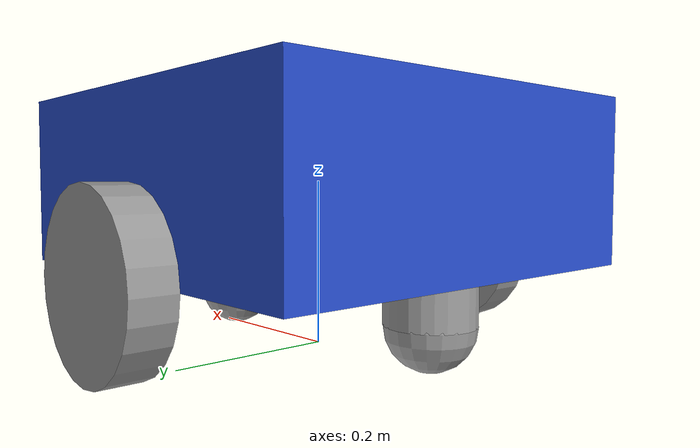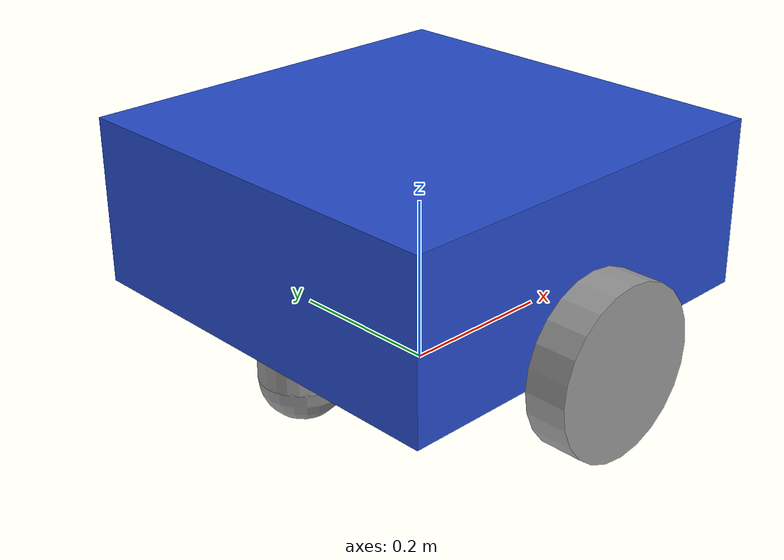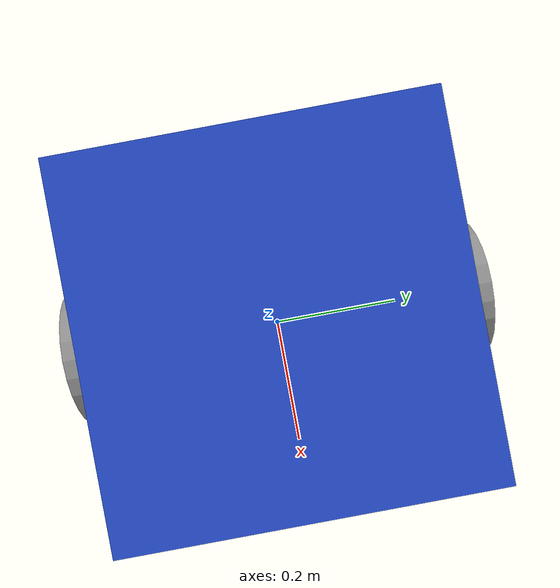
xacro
<?xml version="1.0"?>
<robot name="square_robot" xmlns:xacro="http://www.ros.org/wiki/xacro">

    <xacro:property name="base_length" value="0.5" />
    <xacro:property name="base_width" value="0.5" />
    <xacro:property name="base_height" value="0.2" />
    <xacro:property name="wheel_radius" value="0.1" />
    <xacro:property name="wheel_length" value="0.05" />

    <!-- Base Footprint -->
    <link name="base_footprint" />

    <!-- Base Link (Square Chassis) -->
    <link name="base_link">
        <visual>
            <geometry>
                <box size="${base_length} ${base_width} ${base_height}" />
            </geometry>
            <origin xyz="0 0 0.1" rpy="0 0 0" />
            <material name="blue"/>
        </visual>
        <collision>
            <geometry>
                <box size="${base_length} ${base_width} ${base_height}" />
            </geometry>
            <origin xyz="0 0 0.1" rpy="0 0 0" />
        </collision>
        <xacro:box_inertia m="10.0" x="${base_length}" y="${base_width}" z="${base_height}"
                          o_xyz="0 0 ${base_height / 2.0}" o_rpy="0 0 0" />
    </link>

    <!-- Right Wheel Link -->
    <link name="right_wheel_link">
        <visual>
            <geometry>
                <cylinder radius="${wheel_radius}" length="${wheel_length}" />
            </geometry>
            <origin xyz="0 0 0" rpy="1.5708 0 0" />
            <material name="grey"/>
        </visual>
        <collision>
            <geometry>
                <sphere radius="${wheel_radius}" />
            </geometry>
            <origin xyz="0 0 0" rpy="0 0 0" />
            <surface>
                <friction>
                    <ode>
                        <mu>8.0</mu>
                        <mu2>8.0</mu2>
                    </ode>
                </friction>
            </surface>
        </collision>
        <xacro:cylinder_inertia m="8.0" r="${wheel_radius}" l="${wheel_length}"
                                   o_xyz="0 0 0" o_rpy="${pi / 2.0} 0 0" />
    </link>

    <!-- Left Wheel Link -->
    <link name="left_wheel_link">
        <visual>
            <geometry>
                <cylinder radius="${wheel_radius}" length="${wheel_length}" />
            </geometry>
            <origin xyz="0 0 0" rpy="1.5708 0 0" />
            <material name="grey"/>
        </visual>
        <collision>
            <geometry>
                <sphere radius="${wheel_radius}" />
            </geometry>
            <origin xyz="0 0 0" rpy="0 0 0" />
            <surface>
                <friction>
                    <ode>
                        <mu>8.0</mu>
                        <mu2>8.0</mu2>
                    </ode>
                </friction>
            </surface>
        </collision>
        <xacro:cylinder_inertia m="8.0" r="${wheel_radius}" l="${wheel_length}"
                                   o_xyz="0 0 0" o_rpy="${pi / 2.0} 0 0" />
    </link>

    <!-- Front Caster Wheel Link -->
    <link name="caster_wheel_link">
        <visual>
            <geometry>
                <sphere radius="${wheel_radius / 2.0}" />
            </geometry>
            <origin xyz="0 0 0" rpy="0 0 0" />
            <material name="grey" />
        </visual>
        <collision>
            <geometry>
                <sphere radius="${wheel_radius / 2.0}" />
            </geometry>
            <origin xyz="0 0 0" rpy="0 0 0" />
        </collision>
        <xacro:sphere_inertia m="2.0" r="${wheel_radius / 2.0}"
                             o_xyz="0 0 0" o_rpy="0 0 0" />
    </link>

     <!-- Front Caster Wheel Link rod -->
    <link name="caster_wheel_link_rod">
        <visual>
            <geometry>
                <cylinder radius="${wheel_radius / 2.0}" length="${wheel_radius / 2.0}" />
            </geometry>
            <origin xyz="0 0 0" rpy="0 0 1.5708" />
            <material name="grey" />
        </visual>
        <collision>
            <geometry>
                <cylinder radius="${wheel_radius / 2.0}" length="${wheel_radius / 2.0}" />
            </geometry>
            <origin xyz="0 0 0" rpy="0 0 0" />
        </collision>
       <xacro:sphere_inertia m="2.0" r="${wheel_radius / 2.0}"
                             o_xyz="0 0 0" o_rpy="0 0 0" />
    </link>

    <!-- Back Caster Wheel Link -->
    <link name="caster_wheel_link2">
        <visual>
            <geometry>
                <sphere radius="${wheel_radius / 2.0}" />
            </geometry>
            <origin xyz="0 0 0" rpy="0 0 0" />
            <material name="grey" />
        </visual>
        <collision>
            <geometry>
                <sphere radius="${wheel_radius / 2.0}" />
            </geometry>
            <origin xyz="0 0 0" rpy="0 0 0" />
        </collision>
       <xacro:sphere_inertia m="2.0" r="${wheel_radius / 2.0}"
                             o_xyz="0 0 0" o_rpy="0 0 0" />
    </link>

     <!-- back Caster Wheel Link rod -->
    <link name="caster_wheel_link_rod2">
        <visual>
            <geometry>
                <cylinder radius="${wheel_radius / 2.0}" length="${wheel_radius / 2.0}" />
            </geometry>
            <origin xyz="0 0 0" rpy="0 0 1.5708" />
            <material name="grey" />
        </visual>
        <collision>
            <geometry>
                <cylinder radius="${wheel_radius / 2.0}" length="${wheel_radius / 2.0}" />
            </geometry>
            <origin xyz="0 0 0" rpy="0 0 0" />
        </collision>
        <xacro:sphere_inertia m="2.0" r="${wheel_radius / 2.0}"
                             o_xyz="0 0 0" o_rpy="0 0 0" />
    </link>

    <!-- Joints -->
    <!-- Base Joint -->
    <joint name="base_joint" type="fixed">
        <parent link="base_footprint" />
        <child link="base_link" />
        <origin xyz="0 0 0.1" rpy="0 0 0"/>
    </joint>

    <!-- Right Wheel Joint -->
    <joint name="base_right_wheel_joint" type="continuous">
        <parent link="base_link" />
        <child link="right_wheel_link" />
        <origin xyz="0 -${base_length / 2.0 + wheel_length / 2.0} 0" rpy="0 0 0" />
        <axis xyz="0 1 0" />
    </joint>

    <!-- Left Wheel Joint -->
    <joint name="base_left_wheel_joint" type="continuous">
        <parent link="base_link" />
        <child link="left_wheel_link" />
        <origin xyz="0 ${base_length / 2.0 + wheel_length / 2.0} 0" rpy="0 0 0" />
        <axis xyz="0 1 0" />
    </joint>

    <!-- Front Caster Wheel Joint -->
    <joint name="base_caster_wheel_joint" type="fixed">
        <parent link="base_link" />
        <child link="caster_wheel_link" />
        <origin xyz="${base_length / 2.8} 0 -${wheel_radius / 2.0}" rpy="0 0 0" />
    </joint>

    <!-- Front Caster Wheel Joint rod-->
    <joint name="base_caster_wheel_rod_joint" type="fixed">
        <parent link="base_link" />
        <child link="caster_wheel_link_rod" />
        <origin xyz="${base_length / 2.8} 0 -${wheel_radius / 4.0}" rpy="0 0 0" />
    </joint>

    <!-- Back Caster Wheel Joint -->
    <joint name="base_caster_wheel_joint2" type="fixed">
        <parent link="base_link" />
        <child link="caster_wheel_link2" />
        <origin xyz="-${base_length / 2.8} 0 -${wheel_radius / 2.0}" rpy="0 0 0" />
    </joint>

    <!-- Back Caster Wheel Joint rod-->
    <joint name="base_caster_wheel_rod_joint2" type="fixed">
        <parent link="base_link" />
        <child link="caster_wheel_link_rod2" />
        <origin xyz="-${base_length / 2.8} 0 -${wheel_radius / 4.0}" rpy="0 0 0" />
    </joint>

</robot>
